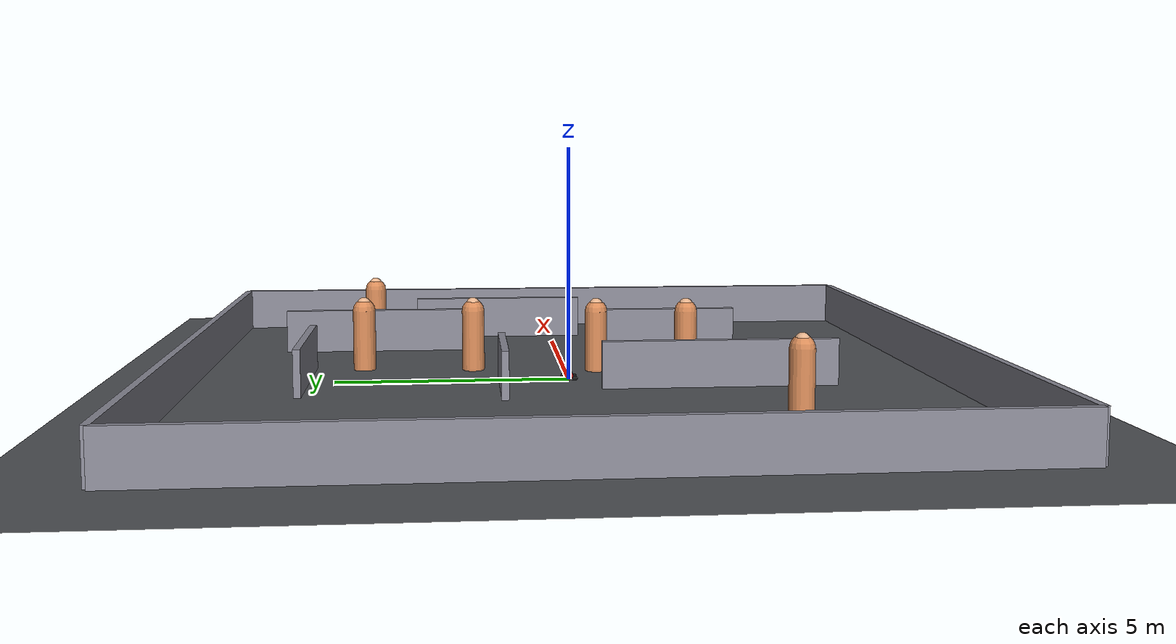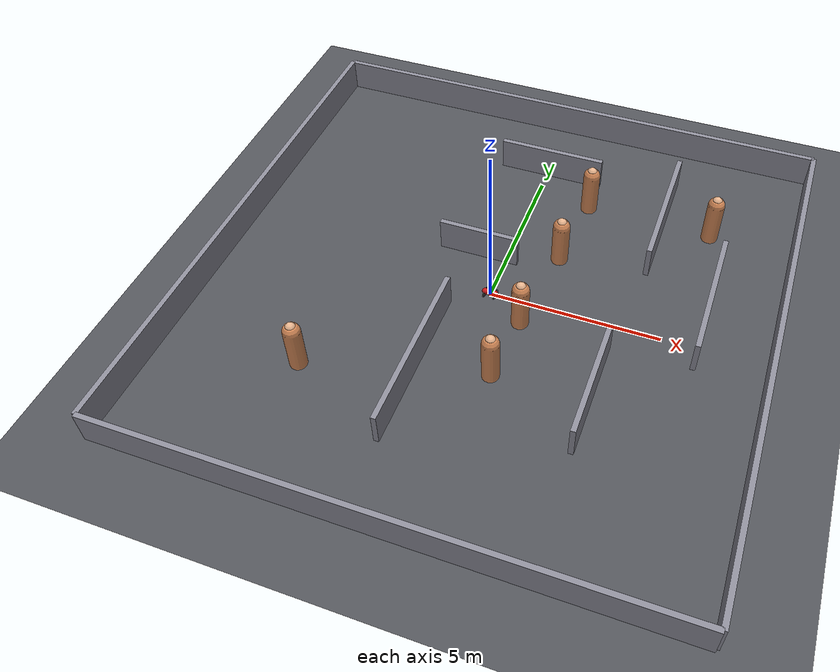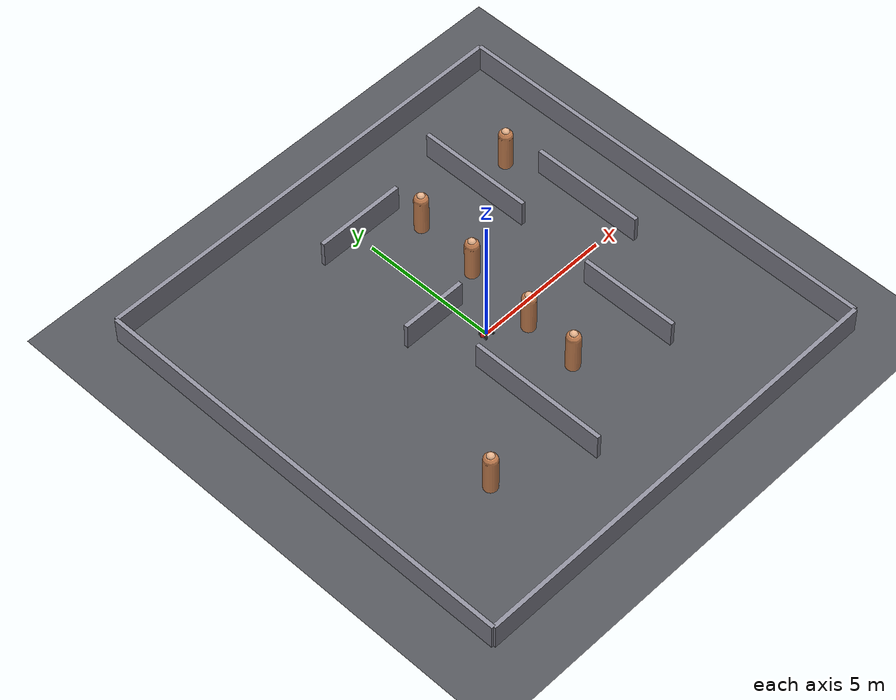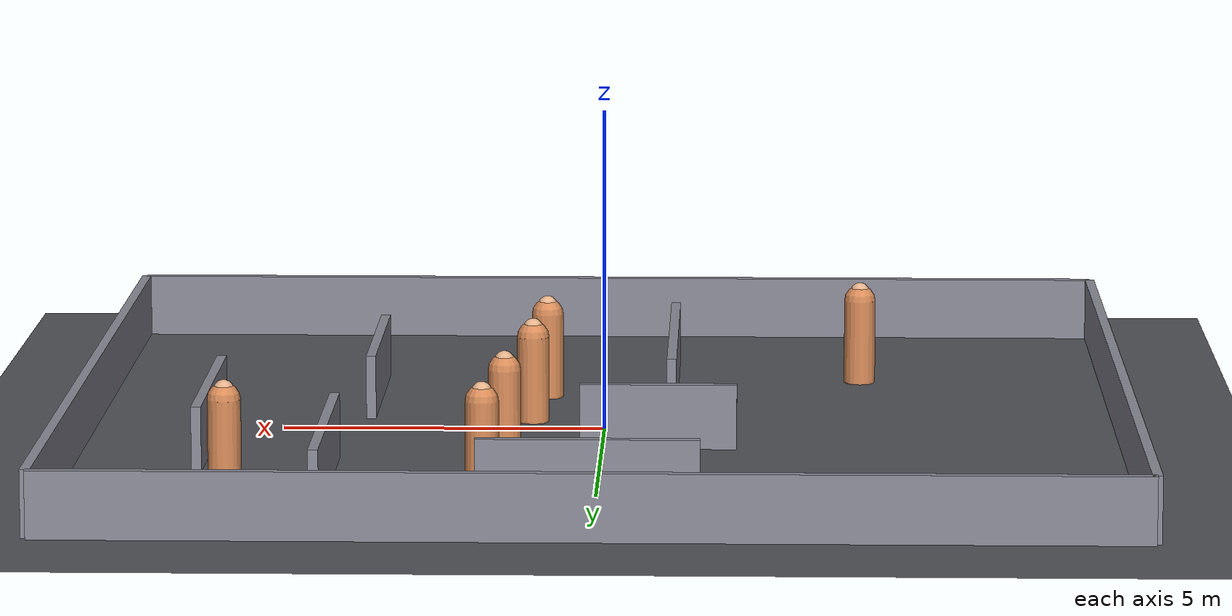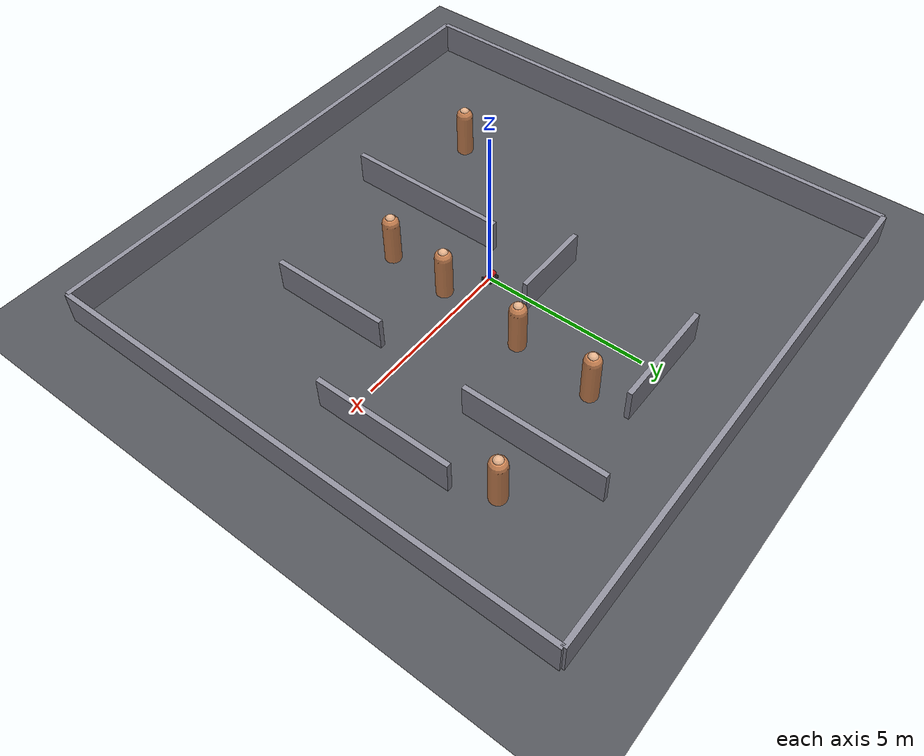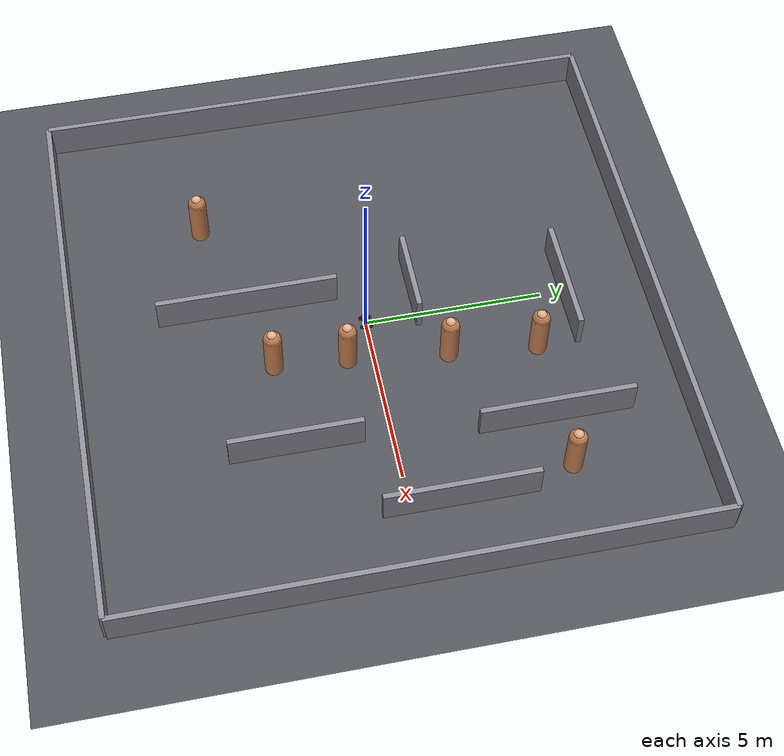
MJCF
<mujoco model="ackermann_car_room">
  <compiler angle="radian"/>
  <option timestep="0.002" gravity="0 0 -9.81" iterations="4" cone="pyramidal"/>

  <default>
    <joint damping="0.05"/>
    <geom friction="2.0 0.1 0.1" contype="1" conaffinity="1"/>
  </default>

  <worldbody>
    <light name="ceiling" pos="0 0 6" dir="0 0 -1" diffuse="0.8 0.8 0.8"/>
    <geom name="floor" type="plane" size="10.0 10.0 0.1" rgba="0.32 0.33 0.35 1"/>
    <geom name="wall_0" type="box" size="8.0000 0.0750 0.5000" pos="0.0000 -8.0000 0.5000" rgba="0.55 0.55 0.60 1"/>
    <geom name="wall_1" type="box" size="8.0000 0.0750 0.5000" pos="0.0000 8.0000 0.5000" rgba="0.55 0.55 0.60 1"/>
    <geom name="wall_2" type="box" size="0.0750 8.0000 0.5000" pos="-8.0000 0.0000 0.5000" rgba="0.55 0.55 0.60 1"/>
    <geom name="wall_3" type="box" size="0.0750 8.0000 0.5000" pos="8.0000 0.0000 0.5000" rgba="0.55 0.55 0.60 1"/>
    <geom name="wall_4" type="box" size="0.0750 2.5159 0.5000" pos="-1.0326 -3.1341 0.5000" rgba="0.55 0.55 0.60 1"/>
    <geom name="wall_5" type="box" size="0.0750 1.8099 0.5000" pos="3.6894 -2.5569 0.5000" rgba="0.55 0.55 0.60 1"/>
    <geom name="wall_6" type="box" size="0.0750 2.1187 0.5000" pos="4.0328 4.3813 0.5000" rgba="0.55 0.55 0.60 1"/>
    <geom name="wall_7" type="box" size="1.2014 0.0750 0.5000" pos="-0.8558 1.4415 0.5000" rgba="0.55 0.55 0.60 1"/>
    <geom name="wall_8" type="box" size="1.6401 0.0750 0.5000" pos="0.1032 5.6268 0.5000" rgba="0.55 0.55 0.60 1"/>
    <geom name="wall_9" type="box" size="0.0750 2.0806 0.5000" pos="6.0299 1.3414 0.5000" rgba="0.55 0.55 0.60 1"/>
    <geom name="human_0" type="capsule" size="0.250 0.663" pos="1.1390 -0.7151 0.6630" rgba="0.85 0.55 0.35 1"/>
    <geom name="human_head_0" type="sphere" size="0.155" pos="1.1390 -0.7151 1.4635" rgba="0.90 0.70 0.55 1" contype="0" conaffinity="0"/>
    <geom name="human_1" type="capsule" size="0.250 0.663" pos="0.9835 -2.7257 0.6630" rgba="0.85 0.55 0.35 1"/>
    <geom name="human_head_1" type="sphere" size="0.155" pos="0.9835 -2.7257 1.4635" rgba="0.90 0.70 0.55 1" contype="0" conaffinity="0"/>
    <geom name="human_2" type="capsule" size="0.250 0.663" pos="-4.0379 -4.0725 0.6630" rgba="0.85 0.55 0.35 1"/>
    <geom name="human_head_2" type="sphere" size="0.155" pos="-4.0379 -4.0725 1.4635" rgba="0.90 0.70 0.55 1" contype="0" conaffinity="0"/>
    <geom name="human_3" type="capsule" size="0.250 0.663" pos="1.4661 2.0366 0.6630" rgba="0.85 0.55 0.35 1"/>
    <geom name="human_head_3" type="sphere" size="0.155" pos="1.4661 2.0366 1.4635" rgba="0.90 0.70 0.55 1" contype="0" conaffinity="0"/>
    <geom name="human_4" type="capsule" size="0.250 0.663" pos="5.5040 4.4520 0.6630" rgba="0.85 0.55 0.35 1"/>
    <geom name="human_head_4" type="sphere" size="0.155" pos="5.5040 4.4520 1.4635" rgba="0.90 0.70 0.55 1" contype="0" conaffinity="0"/>
    <geom name="human_5" type="capsule" size="0.250 0.663" pos="1.6919 4.4860 0.6630" rgba="0.85 0.55 0.35 1"/>
    <geom name="human_head_5" type="sphere" size="0.155" pos="1.6919 4.4860 1.4635" rgba="0.90 0.70 0.55 1" contype="0" conaffinity="0"/>

    <body name="chassis" pos="0 0 0.1">
      <freejoint name="chassis_free"/>
      <geom name="chassis_geom" type="capsule" size="0.09" fromto="-0.15 0 0 0.15 0 0" mass="3.0" rgba="0.8 0.1 0.1 1"/>

      <body name="wheel_fl" pos="0.1483 0.115 -0.05">
        <joint name="steer_fl" type="hinge" axis="0 0 1" range="-0.6 0.6" limited="true" damping="1.0"/>
        <geom name="knuckle_fl_geom" type="sphere" size="0.01" mass="0.05" rgba="0.2 0.2 0.2 1"/>
        <body name="wheel_fl_spin">
          <joint name="spin_fl" type="hinge" axis="0 1 0" damping="0.001"/>
          <geom name="wheel_fl_geom" type="capsule" size="0.05" fromto="0 -0.0215 0 0 0.0215 0" mass="0.1" rgba="0.1 0.1 0.1 1"/>
        </body>
      </body>
      <body name="wheel_fr" pos="0.1483 -0.115 -0.05">
        <joint name="steer_fr" type="hinge" axis="0 0 1" range="-0.6 0.6" limited="true" damping="1.0"/>
        <geom name="knuckle_fr_geom" type="sphere" size="0.01" mass="0.05" rgba="0.2 0.2 0.2 1"/>
        <body name="wheel_fr_spin">
          <joint name="spin_fr" type="hinge" axis="0 1 0" damping="0.001"/>
          <geom name="wheel_fr_geom" type="capsule" size="0.05" fromto="0 -0.0215 0 0 0.0215 0" mass="0.1" rgba="0.1 0.1 0.1 1"/>
        </body>
      </body>
      <body name="wheel_rl" pos="-0.1483 0.115 -0.05">
        <joint name="spin_rl" type="hinge" axis="0 1 0" damping="0.001"/>
        <geom name="wheel_rl_geom" type="capsule" size="0.05" fromto="0 -0.0215 0 0 0.0215 0" mass="0.1" rgba="0.1 0.1 0.1 1"/>
      </body>
      <body name="wheel_rr" pos="-0.1483 -0.115 -0.05">
        <joint name="spin_rr" type="hinge" axis="0 1 0" damping="0.001"/>
        <geom name="wheel_rr_geom" type="capsule" size="0.05" fromto="0 -0.0215 0 0 0.0215 0" mass="0.1" rgba="0.1 0.1 0.1 1"/>
      </body>
    </body>
  </worldbody>

  <equality>
    <joint joint1="steer_fl" joint2="steer_fr"/>
  </equality>

  <actuator>
    <position name="steer" joint="steer_fl" kp="80" ctrlrange="-0.6 0.6" forcerange="-20 20"/>
    <motor name="throttle_rl" joint="spin_rl" gear="0.78" ctrlrange="-1 1"/>
    <motor name="throttle_rr" joint="spin_rr" gear="0.78" ctrlrange="-1 1"/>
  </actuator>
</mujoco>
